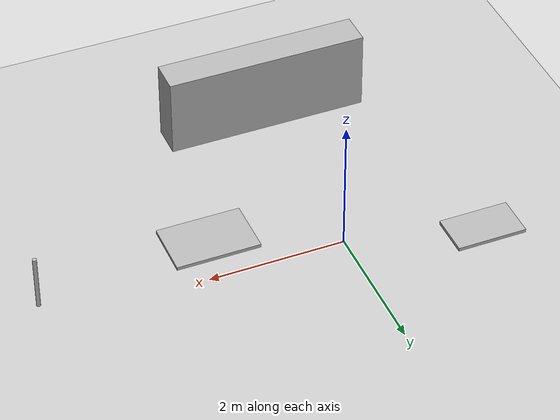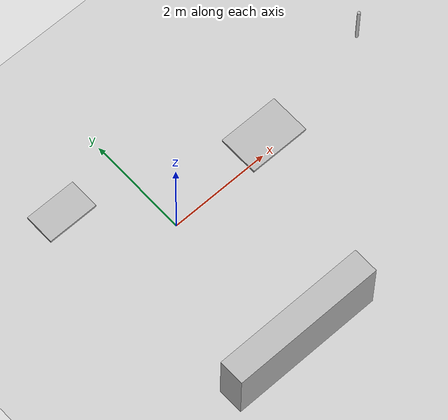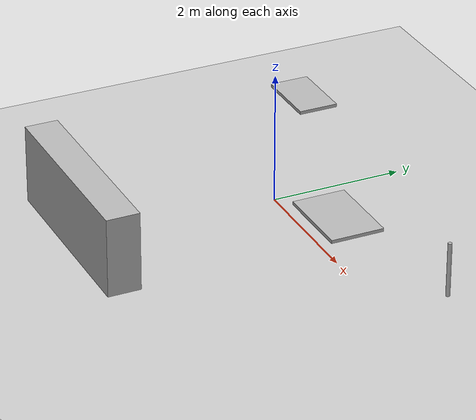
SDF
<sdf version="1.6">
 <world name="restaurant_world">
  <include><uri>model://sun</uri></include>
  <include><uri>model://ground_plane</uri></include>
  <model name="table_1">
   <pose>2 0 0.75 0 0 0</pose>
   <static>true</static>
   <link name="link">
    <collision name="coll"><geometry><box><size>1.2 0.8 0.05</size></box></geometry></collision>
    <visual name="vis"><geometry><box><size>1.2 0.8 0.05</size></box></geometry></visual>
   </link>
   <link name="leg1">
    <pose>2.5 0.35 0.4 0 0 0</pose>
    <collision name="coll_leg1">
     <geometry><cylinder><radius>0.03</radius><length>0.8</length></cylinder></geometry>
    </collision>
    <visual name="vis_leg1">
     <geometry><cylinder><radius>0.03</radius><length>0.8</length></cylinder></geometry>
    </visual>
   </link>
  </model>
  <model name="table_2">
   <pose>-1.5 1.2 0.75 0 0 0</pose>
   <static>true</static>
   <link name="link">
    <collision name="coll"><geometry><box><size>1.0 0.6 0.05</size></box></geometry></collision>
    <visual name="vis"><geometry><box><size>1.0 0.6 0.05</size></box></geometry></visual>
   </link>
  </model>
  <model name="counter">
   <pose>0 -3 0.6 0 0 0</pose>
   <static>true</static>
   <link name="link">
    <collision name="coll"><geometry><box><size>3 0.5 1.2</size></box></geometry></collision>
    <visual name="vis"><geometry><box><size>3 0.5 1.2</size></box></geometry></visual>
   </link>
  </model>
 </world>
</sdf>
